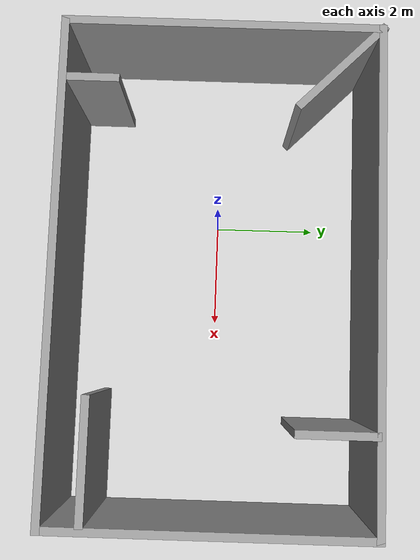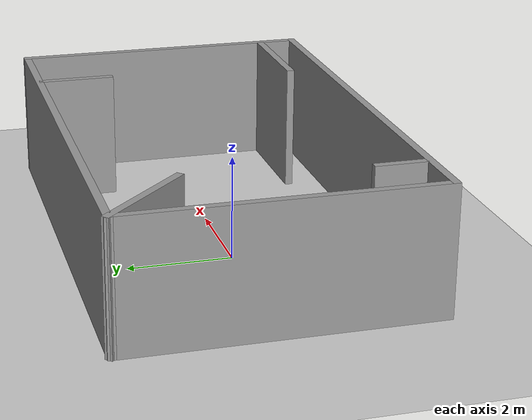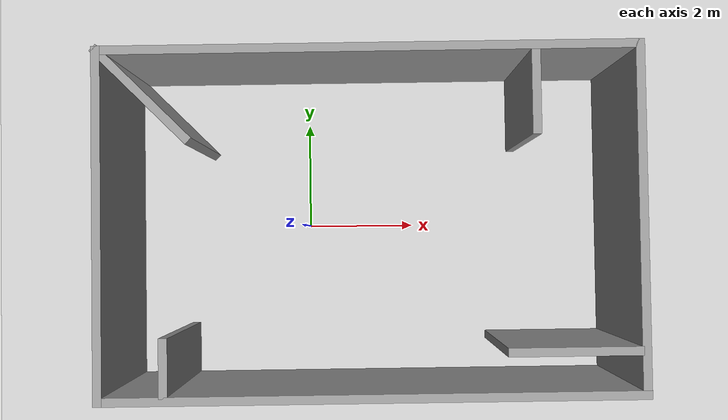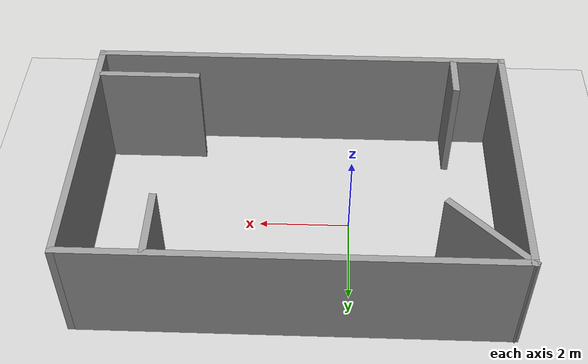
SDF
<sdf version="1.7">
 <world name="default">
  <light name="sun" type="directional">
   <pose>0 0 10 0 -0 0</pose>
   <diffuse>0.8 0.8 0.8 1</diffuse>
   <specular>0.2 0.2 0.2 1</specular>
   <attenuation>
    <range>1000</range>
    <constant>0.9</constant>
    <linear>0.01</linear>
    <quadratic>0.001</quadratic>
   </attenuation>
   <direction>-0.5 0.1 -0.9</direction>
   <spot><inner_angle>0</inner_angle><outer_angle>0</outer_angle><falloff>0</falloff></spot>
  </light>
  <model name="ground_plane">
   <static>1</static>
   <link name="link">
    <collision name="collision">
     <geometry><plane><normal>0 0 1</normal><size>100 100</size></plane></geometry>
     <surface><friction><ode><mu>100</mu><mu2>50</mu2></ode></friction></surface>
    </collision>
    <visual name="visual">
     <cast_shadows>0</cast_shadows>
     <geometry><plane><normal>0 0 1</normal><size>100 100</size></plane></geometry>
     <material>
      <script><uri>file://media/materials/scripts/gazebo.material</uri><name>Gazebo/Grey</name></script>
     </material>
    </visual>
   </link>
  </model>
  <gravity>0 0 -9.8</gravity>
  <magnetic_field>6e-06 2.3e-05 -4.2e-05</magnetic_field>
  <atmosphere type="adiabatic"/>
  <physics type="ode">
   <max_step_size>0.001</max_step_size>
   <real_time_factor>1</real_time_factor>
   <real_time_update_rate>1000</real_time_update_rate>
  </physics>
  <scene><ambient>0.4 0.4 0.4 1</ambient><background>0.7 0.7 0.7 1</background><shadows>1</shadows></scene>
  <audio><device>default</device></audio>
  <spherical_coordinates>
   <surface_model>EARTH_WGS84</surface_model>
   <latitude_deg>0</latitude_deg>
   <longitude_deg>0</longitude_deg>
   <elevation>0</elevation>
   <heading_deg>0</heading_deg>
  </spherical_coordinates>
  <model name="map3">
   <pose>1.15447 0.030533 0 0 -0 0</pose>
   <link name="Wall_13">
    <collision name="Wall_13_Collision">
     <geometry><box><size>2.25 0.15 2.5</size></box></geometry>
     <pose>0 0 1.25 0 -0 0</pose>
    </collision>
    <visual name="Wall_13_Visual">
     <pose>0 0 1.25 0 -0 0</pose>
     <geometry><box><size>2.25 0.15 2.5</size></box></geometry>
     <material>
      <script><uri>file://media/materials/scripts/gazebo.material</uri><name>Gazebo/Grey</name></script>
      <ambient>1 1 1 1</ambient>
     </material>
     <meta><layer>0</layer></meta>
    </visual>
    <pose>-3.79201 2.16701 0 0 -0 -0.785398</pose>
   </link>
   <link name="Wall_15">
    <collision name="Wall_15_Collision">
     <geometry><box><size>6 0.15 2.5</size></box></geometry>
     <pose>0 0 1.25 0 -0 0</pose>
    </collision>
    <visual name="Wall_15_Visual">
     <pose>0 0 1.25 0 -0 0</pose>
     <geometry><box><size>6 0.15 2.5</size></box></geometry>
     <material>
      <script><uri>file://media/materials/scripts/gazebo.material</uri><name>Gazebo/Grey</name></script>
      <ambient>1 1 1 1</ambient>
     </material>
     <meta><layer>0</layer></meta>
    </visual>
    <pose>-4.53447 -0.015533 0 0 -0 -1.5708</pose>
   </link>
   <link name="Wall_16">
    <collision name="Wall_16_Collision">
     <geometry><box><size>9.25 0.15 2.5</size></box></geometry>
     <pose>0 0 1.25 0 -0 0</pose>
    </collision>
    <visual name="Wall_16_Visual">
     <pose>0 0 1.25 0 -0 0</pose>
     <geometry><box><size>9.25 0.15 2.5</size></box></geometry>
     <material>
      <script><uri>file://media/materials/scripts/gazebo.material</uri><name>Gazebo/Grey</name></script>
      <ambient>1 1 1 1</ambient>
     </material>
     <meta><layer>0</layer></meta>
    </visual>
    <pose>0.015533 -2.94053 0 0 -0 0</pose>
   </link>
   <link name="Wall_19">
    <collision name="Wall_19_Collision">
     <geometry><box><size>6 0.15 2.5</size></box></geometry>
     <pose>0 0 1.25 0 -0 0</pose>
    </collision>
    <visual name="Wall_19_Visual">
     <pose>0 0 1.25 0 -0 0</pose>
     <geometry><box><size>6 0.15 2.5</size></box></geometry>
     <material>
      <script><uri>file://media/materials/scripts/gazebo.material</uri><name>Gazebo/Grey</name></script>
      <ambient>1 1 1 1</ambient>
     </material>
     <meta><layer>0</layer></meta>
    </visual>
    <pose>4.56553 -0.015533 0 0 -0 1.5708</pose>
   </link>
   <link name="Wall_21">
    <collision name="Wall_21_Collision">
     <geometry><box><size>9.25 0.15 2.5</size></box></geometry>
     <pose>0 0 1.25 0 -0 0</pose>
    </collision>
    <visual name="Wall_21_Visual">
     <pose>0 0 1.25 0 -0 0</pose>
     <geometry><box><size>9.25 0.15 2.5</size></box></geometry>
     <material>
      <script><uri>file://media/materials/scripts/gazebo.material</uri><name>Gazebo/Grey</name></script>
      <ambient>1 1 1 1</ambient>
     </material>
     <meta><layer>0</layer></meta>
    </visual>
    <pose>0.015533 2.90947 0 0 -0 3.14159</pose>
   </link>
   <link name="Wall_23">
    <collision name="Wall_23_Collision">
     <geometry><box><size>1 0.15 2.5</size></box></geometry>
     <pose>0 0 1.25 0 -0 0</pose>
    </collision>
    <visual name="Wall_23_Visual">
     <pose>0 0 1.25 0 -0 0</pose>
     <geometry><box><size>1 0.15 2.5</size></box></geometry>
     <material>
      <script><uri>file://media/materials/scripts/gazebo.material</uri><name>Gazebo/Grey</name></script>
      <ambient>1 1 1 1</ambient>
     </material>
     <meta><layer>0</layer></meta>
    </visual>
    <pose>-3.44628 -2.39807 0 0 -0 1.5708</pose>
   </link>
   <link name="Wall_25">
    <collision name="Wall_25_Collision">
     <geometry><box><size>2.25 0.15 2.5</size></box></geometry>
     <pose>0 0 1.25 0 -0 0</pose>
    </collision>
    <visual name="Wall_25_Visual">
     <pose>0 0 1.25 0 -0 0</pose>
     <geometry><box><size>2.25 0.15 2.5</size></box></geometry>
     <material>
      <script><uri>file://media/materials/scripts/gazebo.material</uri><name>Gazebo/Grey</name></script>
      <ambient>1 1 1 1</ambient>
     </material>
     <meta><layer>0</layer></meta>
    </visual>
    <pose>3.396 -2.21127 0 0 -0 3.14159</pose>
   </link>
   <link name="Wall_27">
    <collision name="Wall_27_Collision">
     <geometry><box><size>1.5 0.15 2.5</size></box></geometry>
     <pose>0 0 1.25 0 -0 0</pose>
    </collision>
    <visual name="Wall_27_Visual">
     <pose>0 0 1.25 0 -0 0</pose>
     <geometry><box><size>1.5 0.15 2.5</size></box></geometry>
     <material>
      <script><uri>file://media/materials/scripts/gazebo.material</uri><name>Gazebo/Grey</name></script>
      <ambient>1 1 1 1</ambient>
     </material>
     <meta><layer>0</layer></meta>
    </visual>
    <pose>2.82472 2.16112 0 0 -0 -1.5708</pose>
   </link>
   <static>1</static>
  </model>
 </world>
</sdf>
